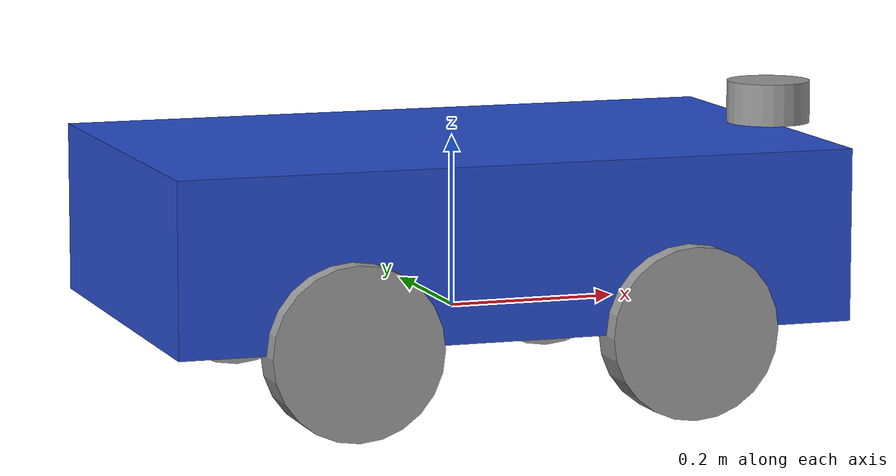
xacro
<?xml version="1.0"?>
<robot name="my_robot" xmlns:xacro="http://www.ros.org/wiki/xacro">

    <xacro:property name="base_link_length" value="0.8" />
    <xacro:property name="base_link_width" value="0.5" />
    <xacro:property name="base_link_height" value="0.2" />
    <xacro:property name="wheel_radius" value="0.1" />
    <xacro:property name="wheel_length" value="0.05" />

    <link name="base_link">
        <visual>
            <geometry>
                <box size="${base_link_length} ${base_link_width} ${base_link_height}" />
            </geometry>
            <origin xyz="0 0 ${base_link_height/2.0}" rpy="0 0 0" />
            <material name="blue" />
        </visual>
        <collision>
            <geometry>
                <box size="${base_link_length} ${base_link_width} ${base_link_height}" />
            </geometry>
            <origin xyz="0 0 ${base_link_height/2.0}" rpy="0 0 0" />
        </collision>
        <xacro:box_inertia m="5.0" x="${base_link_length}" y="${base_link_width}"
            z="${base_link_height}" o_xyz="0 0 ${base_link_height/2.0}" o_rpy="0 0 0" />
    </link>
    <link name="second_link">
        <visual>
            <geometry>
                <cylinder radius="0.05" length="0.05" />
            </geometry>
            <origin xyz="0 0 0.025" rpy="0 0 0" />
            <material name="grey" />
        </visual>
        <collision>
            <geometry>
                <box size="0.2 0.2 0.2" />
            </geometry>
            <origin xyz="0 0 0.1" rpy="0 0 0" />
        </collision>
        <xacro:box_inertia m="1.0" x="0.2" y="0.2"
            z="0.2" o_xyz="0 0 0.1" o_rpy="0 0 0" />
    </link>
    <link name="third_link">
        <visual>
            <geometry>
                <box size="${base_link_length-0.3} ${base_link_width-0.3} ${base_link_height-0.3}" />
            </geometry>
            <origin xyz="0 0 0.05" rpy="0 0 0" />
            <material name="grey" />
        </visual>
        <collision>
            <geometry>
                <box size="0.1 0.1 0.1" />
            </geometry>
            <origin xyz="0 0 0.05" rpy="0 0 0" />
        </collision>
        <xacro:box_inertia m="1.0" x="0.1" y="0.1"
            z="0.1" o_xyz="0 0 0.05" o_rpy="0 0 0" />
    </link>

    <link name="right_rear_wheel_link">
        <visual>
            <geometry>
                <cylinder radius="${wheel_radius}" length="${wheel_length}" />
            </geometry>
            <origin xyz="0 0 0" rpy="${pi/2.0} 0 0" />
            <material name="grey" />
        </visual>
        <collision>
            <geometry>
                <sphere radius="${wheel_radius}" />
            </geometry>
            <origin xyz="0 0 0" rpy="0 0 0" />
        </collision>
        <xacro:wheel_inertia m="1.0" r="${wheel_radius}" l="${wheel_length}" o_xyz="0 0 0"
            o_rpy="${pi/2.0} 0 0" />
    </link>

    <link name="right_front_wheel_link">
        <visual>
            <geometry>
                <cylinder radius="${wheel_radius}" length="${wheel_length}" />
            </geometry>
            <origin xyz="0 0 0" rpy="${pi/2.0} 0 0" />
            <material name="grey" />
        </visual>
        <collision>
            <geometry>
                <sphere radius="${wheel_radius}" />
            </geometry>
            <origin xyz="0 0 0" rpy="0 0 0" />
        </collision>
        <xacro:wheel_inertia m="1.0" r="${wheel_radius}" l="${wheel_length}" o_xyz="0 0 0"
            o_rpy="${pi/2.0} 0 0" />
    </link>

    <link name="left_rear_wheel_link">
        <visual>
            <geometry>
                <cylinder radius="${wheel_radius}" length="${wheel_length}" />
            </geometry>
            <origin xyz="0 0 0" rpy="${pi/2.0} 0 0" />
            <material name="grey" />
        </visual>
        <collision>
            <geometry>
                <sphere radius="${wheel_radius}" />
            </geometry>
            <origin xyz="0 0 0" rpy="0 0 0" />
        </collision>
        <xacro:wheel_inertia m="1.0" r="${wheel_radius}" l="${wheel_length}" o_xyz="0 0 0"
            o_rpy="${pi/2.0} 0 0" />
    </link>

    <link name="left_front_wheel_link">
        <visual>
            <geometry>
                <cylinder radius="${wheel_radius}" length="${wheel_length}" />
            </geometry>
            <origin xyz="0 0 0" rpy="${pi/2.0} 0 0" />
            <material name="grey" />
        </visual>
        <collision>
            <geometry>
                <sphere radius="${wheel_radius}" />
            </geometry>
            <origin xyz="0 0 0" rpy="0 0 0" />
        </collision>
        <xacro:wheel_inertia m="1.0" r="${wheel_radius}" l="${wheel_length}" o_xyz="0 0 0"
            o_rpy="${pi/2.0} 0 0" />
    </link>

    <joint name="base_second_joint" type="fixed">
        <parent link="base_link" />
        <child link="second_link" />
        <origin xyz="${base_link_length/2.0} 0 ${base_link_height}" rpy="0 0 0" />
    </joint>

    <joint name="base_third_joint" type="prismatic">
        <parent link="base_link"/>
        <child link="third_link"/>
        <origin xyz="0 0 ${base_link_height-0.2}" rpy="0 0 0"/>
        <axis xyz="0 0 1"/>
        <limit lower="0.0" upper="0.2" effort="150" velocity="0.4"/>
        <dynamics damping="5.0" friction="0.0"/>
    </joint>

    <!-- Adding a Wheel -->
    <joint name="base_right_rear_wheel_joint" type="continuous">
        <parent link="base_link" />
        <child link="right_rear_wheel_link" />
        <origin xyz="${-base_link_length/4.0} ${-base_link_width/2.0} 0" rpy="0 0 0" />
        <axis xyz="0 1 0" />
    </joint>

    <joint name="base_right_front_wheel_joint" type="continuous">
        <parent link="base_link" />
        <child link="right_front_wheel_link" />
        <origin xyz="${base_link_length/4.0} ${-base_link_width/2.0} 0" rpy="0 0 0" />
        <axis xyz="0 1 0" />
    </joint>

    <joint name="base_left_rear_wheel_joint" type="continuous">
        <parent link="base_link" />
        <child link="left_rear_wheel_link" />
        <origin xyz="${-base_link_length/4.0} ${base_link_width/2.0} 0" rpy="0 0 0" />
        <axis xyz="0 1 0" />
    </joint>

    <joint name="base_left_front_wheel_joint" type="continuous">
        <parent link="base_link" />
        <child link="left_front_wheel_link" />
        <origin xyz="${base_link_length/4.0} ${base_link_width/2.0} 0" rpy="0 0 0" />
        <axis xyz="0 1 0" />
    </joint>
</robot>
